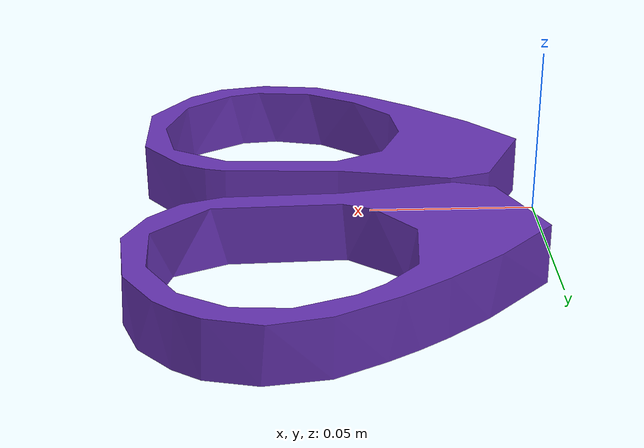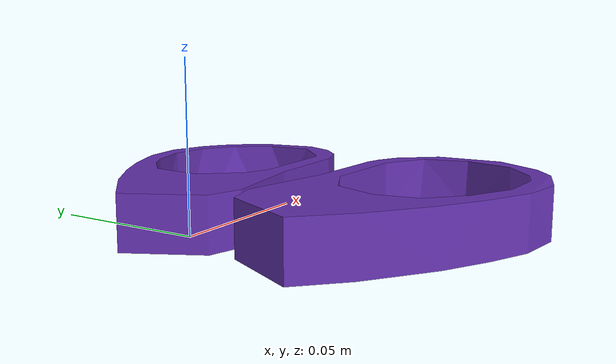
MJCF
<mujoco model="top_watertight_tiny">
  <default>
    <default group="2" type="mesh" contype="0" conaffinity="0">
      <geom group="2" type="mesh" contype="0" conaffinity="0"/>
    </default>
    <default group="3" type="mesh">
      <geom group="3" type="mesh"/>
    </default>
  </default>
  <asset>
    <mesh file="top_watertight_tiny.obj"/>
    <mesh file="top_watertight_tiny_collision_0.obj"/>
    <mesh file="top_watertight_tiny_collision_1.obj"/>
    <mesh file="top_watertight_tiny_collision_2.obj"/>
    <mesh file="top_watertight_tiny_collision_3.obj"/>
    <mesh file="top_watertight_tiny_collision_4.obj"/>
    <mesh file="top_watertight_tiny_collision_5.obj"/>
    <mesh file="top_watertight_tiny_collision_6.obj"/>
    <mesh file="top_watertight_tiny_collision_7.obj"/>
    <mesh file="top_watertight_tiny_collision_8.obj"/>
    <mesh file="top_watertight_tiny_collision_9.obj"/>
    <mesh file="top_watertight_tiny_collision_10.obj"/>
    <mesh file="top_watertight_tiny_collision_11.obj"/>
    <mesh file="top_watertight_tiny_collision_12.obj"/>
    <mesh file="top_watertight_tiny_collision_13.obj"/>
    <mesh file="top_watertight_tiny_collision_14.obj"/>
    <mesh file="top_watertight_tiny_collision_15.obj"/>
    <mesh file="top_watertight_tiny_collision_16.obj"/>
    <mesh file="top_watertight_tiny_collision_17.obj"/>
    <mesh file="top_watertight_tiny_collision_18.obj"/>
  </asset>
  <worldbody>
    <body name="top_watertight_tiny">
      <freejoint/>
      <geom mesh="top_watertight_tiny" group="2" type="mesh" rgba="0.4 0.2 0.7 1" contype="0" conaffinity="0"/>
      <geom mesh="top_watertight_tiny_collision_0" rgba="0.07835403746768099 0.3926829857806353 0.3862099841917618 1" group="3" type="mesh"/>
      <geom mesh="top_watertight_tiny_collision_1" rgba="0.014615010374805948 0.9597681835756474 0.9268308403156241 1" group="3" type="mesh"/>
      <geom mesh="top_watertight_tiny_collision_2" rgba="0.1259153466798364 0.25274338535759855 0.5944706128743712 1" group="3" type="mesh"/>
      <geom mesh="top_watertight_tiny_collision_3" rgba="0.5053273983265354 0.7648616612664398 0.8954951465147266 1" group="3" type="mesh"/>
      <geom mesh="top_watertight_tiny_collision_4" rgba="0.8391212107401084 0.26831653624723883 0.8040879772175782 1" group="3" type="mesh"/>
      <geom mesh="top_watertight_tiny_collision_5" rgba="0.8540548871554293 0.3629629452181705 0.917112698103194 1" group="3" type="mesh"/>
      <geom mesh="top_watertight_tiny_collision_6" rgba="0.04605620431409352 0.567550565810277 0.4893714824021954 1" group="3" type="mesh"/>
      <geom mesh="top_watertight_tiny_collision_7" rgba="0.8555349632098179 0.6484495614965262 0.5600912173819101 1" group="3" type="mesh"/>
      <geom mesh="top_watertight_tiny_collision_8" rgba="0.01931510013277926 0.3317255361540473 0.9778679220870377 1" group="3" type="mesh"/>
      <geom mesh="top_watertight_tiny_collision_9" rgba="0.835948462885831 0.18144195176040112 0.5106208529661125 1" group="3" type="mesh"/>
      <geom mesh="top_watertight_tiny_collision_10" rgba="0.4606482343138718 0.40303436960925143 0.18535259706218943 1" group="3" type="mesh"/>
      <geom mesh="top_watertight_tiny_collision_11" rgba="0.8696466620153726 0.9311156072918982 0.9388384268084612 1" group="3" type="mesh"/>
      <geom mesh="top_watertight_tiny_collision_12" rgba="0.14194185040837015 0.6985355736572513 0.8380688159779706 1" group="3" type="mesh"/>
      <geom mesh="top_watertight_tiny_collision_13" rgba="0.8405942267115258 0.2216864359947941 0.6978521421002788 1" group="3" type="mesh"/>
      <geom mesh="top_watertight_tiny_collision_14" rgba="0.505206846111147 0.8053772565613606 0.624528085031636 1" group="3" type="mesh"/>
      <geom mesh="top_watertight_tiny_collision_15" rgba="0.8959751260569063 0.6973112250275826 0.10141966673068048 1" group="3" type="mesh"/>
      <geom mesh="top_watertight_tiny_collision_16" rgba="0.6836355185500322 0.7672320764880727 0.19678468496777846 1" group="3" type="mesh"/>
      <geom mesh="top_watertight_tiny_collision_17" rgba="0.8271641370262214 0.9785178029367485 0.07908868252017065 1" group="3" type="mesh"/>
      <geom mesh="top_watertight_tiny_collision_18" rgba="0.583432771117204 0.5382397838531131 0.9934904228979924 1" group="3" type="mesh"/>
    </body>
  </worldbody>
</mujoco>
